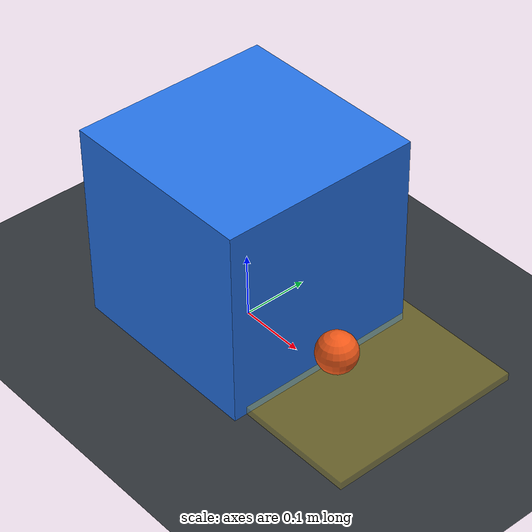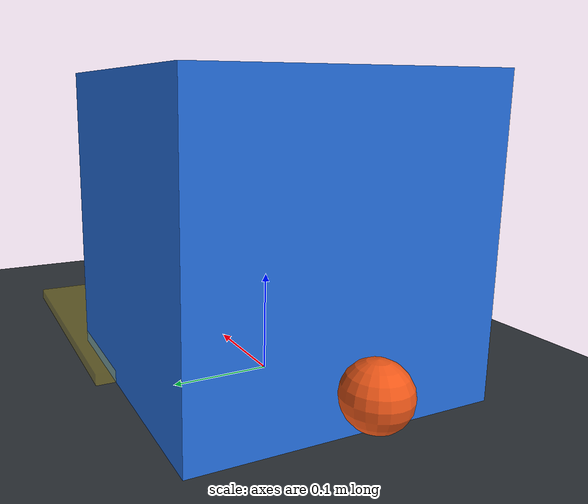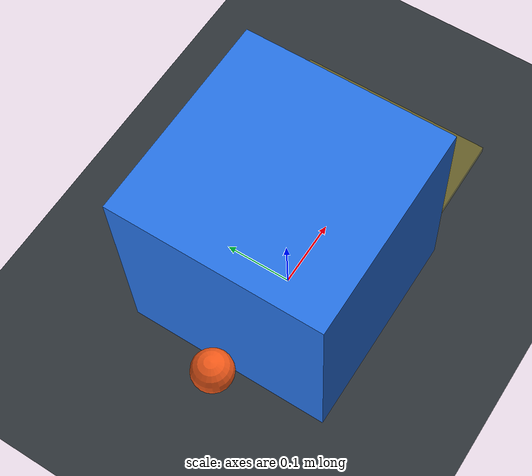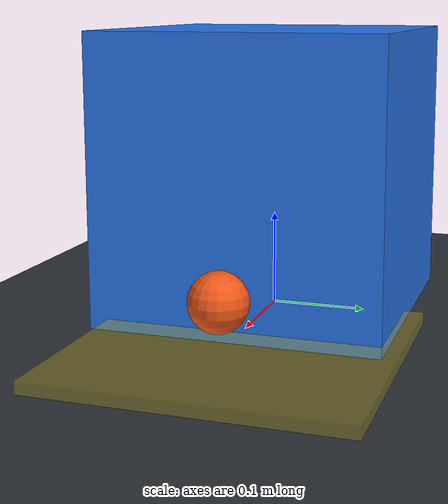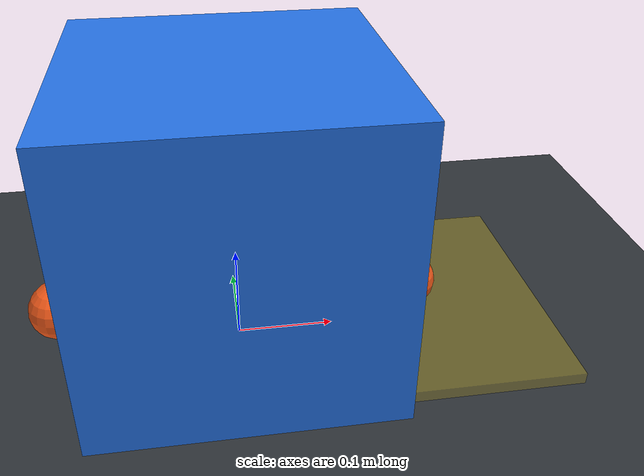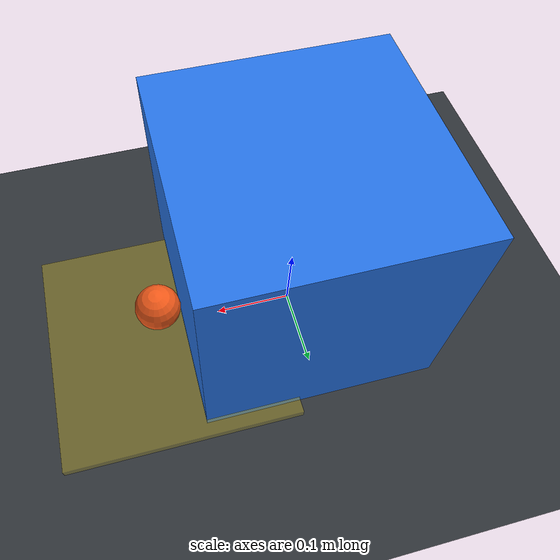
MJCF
<mujoco model="planar_pushing_visualizer">
  <compiler angle="radian" autolimits="true"/>
  <option gravity="0 0 -9.81" timestep="0.01"/>
  <default>
    <geom friction="0.8 0.02 0.001"/>
  </default>
  <worldbody>
    <geom name="table" type="plane" size="2 2 0.1" rgba="0.18 0.20 0.22 1"/>
    <light pos="0 0 2" directional="true"/>
    <camera name="overview" pos="0 -1.5 1.3" xyaxes="1 0 0 0 0.65 0.75"/>
    <body name="block" pos="0 0 0.15">
      <freejoint name="block_free"/>
      <geom name="block_geom" type="box" size="0.15 0.15 0.15" mass="1"
            rgba="0.15 0.45 0.9 1"/>
    </body>
    <body name="left_pusher" pos="-0.18 0 0.05">
      <freejoint name="left_pusher_free"/>
      <geom name="left_pusher_geom" type="sphere" size="0.03" mass="0.1"
            rgba="0.95 0.35 0.1 1"/>
    </body>
    <body name="right_pusher" pos="0.18 0 0.05">
      <freejoint name="right_pusher_free"/>
      <geom name="right_pusher_geom" type="sphere" size="0.03" mass="0.1"
            rgba="0.95 0.35 0.1 1"/>
    </body>
    <!-- Kinematic, non-colliding desired box footprint. -->
    <body name="goal" pos="0.18 0.02 0.006">
      <freejoint name="goal_free"/>
      <geom name="goal_footprint" type="box" size="0.15 0.15 0.006"
            contype="0" conaffinity="0" rgba="1 0.85 0.05 0.28"/>
    </body>
  </worldbody>
</mujoco>
